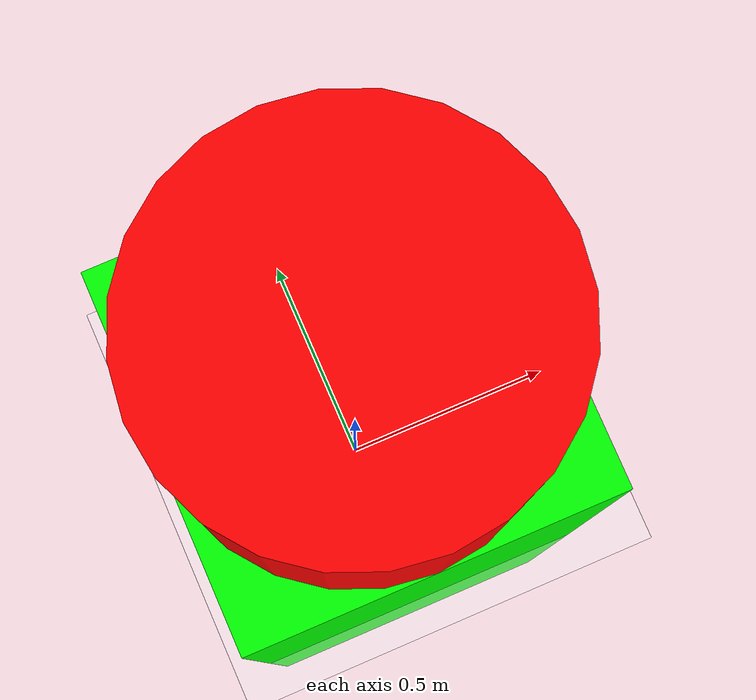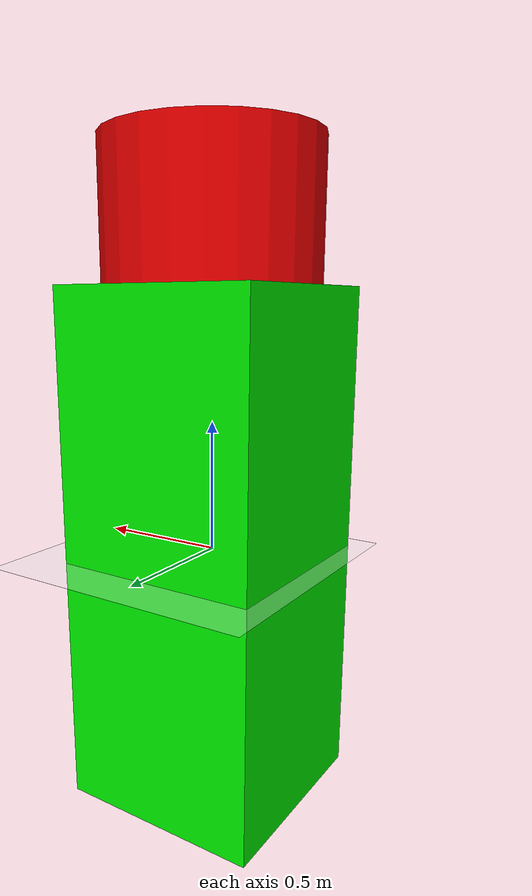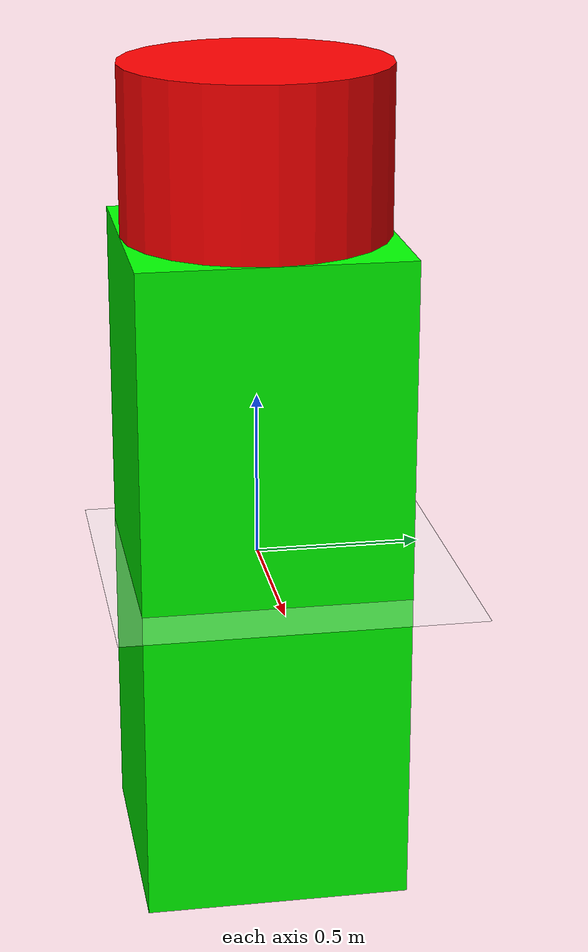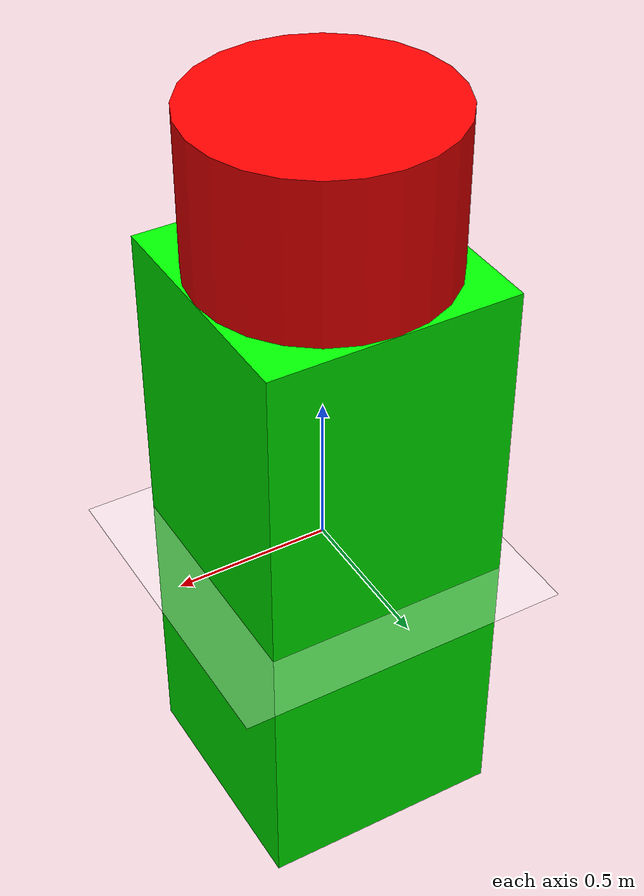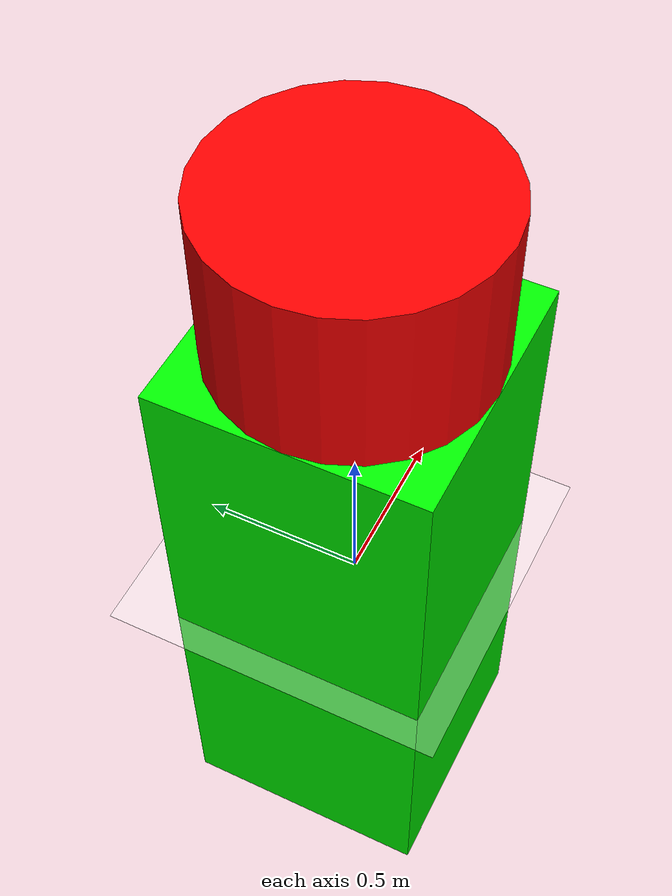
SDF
<sdf version="1.10">
 <world name="mecanum_drive">
  <physics name="1ms" type="ignored">
   <max_step_size>0.001</max_step_size>
   <real_time_factor>1</real_time_factor>
   <real_time_update_rate>1000</real_time_update_rate>
  </physics>
  <plugin name="gz::sim::systems::Physics" filename="gz-sim-physics-system"/>
  <plugin name="gz::sim::systems::UserCommands" filename="gz-sim-user-commands-system"/>
  <plugin name="gz::sim::systems::SceneBroadcaster" filename="gz-sim-scene-broadcaster-system"/>
  <plugin name="gz::sim::systems::Contact" filename="gz-sim-contact-system"/>
  <gravity>0 0 -9.8</gravity>
  <magnetic_field>5.5644999999999998e-06 2.2875799999999999e-05 -4.2388400000000002e-05</magnetic_field>
  <atmosphere type="adiabatic"/>
  <scene>
   <ambient>0.4 0.4 0.4 1</ambient>
   <background>0.7 0.7 0.7 1</background>
   <shadows>true</shadows>
   <grid>false</grid>
  </scene>
  <model name="obstacle_1">
   <pose>0 0 0.5 0 0 0</pose>
   <link name="link">
    <inertial>
     <mass>1.0</mass>
     <inertia><ixx>0.1</ixx><ixy>0</ixy><ixz>0</ixz><iyy>0.1</iyy><iyz>0</iyz><izz>0.1</izz></inertia>
    </inertial>
    <collision name="collision">
     <geometry><cylinder><radius>0.4</radius><length>2.0</length></cylinder></geometry>
    </collision>
    <visual name="visual">
     <geometry><cylinder><radius>0.4</radius><length>2.0</length></cylinder></geometry>
     <material><ambient>1 0 0 1</ambient><diffuse>1 0 0 1</diffuse></material>
    </visual>
   </link>
  </model>
  <model name="obstacle_2">
   <pose>0 0 0.5 0 0 0</pose>
   <link name="link">
    <inertial>
     <mass>1.0</mass>
     <inertia><ixx>0.1</ixx><ixy>0</ixy><ixz>0</ixz><iyy>0.1</iyy><iyz>0</iyz><izz>0.1</izz></inertia>
    </inertial>
    <collision name="collision">
     <geometry><cylinder><radius>0.4</radius><length>2.0</length></cylinder></geometry>
    </collision>
    <visual name="visual">
     <geometry><cylinder><radius>0.4</radius><length>2.0</length></cylinder></geometry>
     <material><ambient>1 0 0 1</ambient><diffuse>1 0 0 1</diffuse></material>
    </visual>
   </link>
  </model>
  <model name="obstacle_3">
   <static>true</static>
   <link name="link">
    <collision name="collision"><geometry><box><size>0.8 0.8 2</size></box></geometry></collision>
    <visual name="visual">
     <geometry><box><size>0.8 0.8 2</size></box></geometry>
     <material><ambient>0 1 0 1</ambient><diffuse>0 1 0 1</diffuse></material>
    </visual>
   </link>
  </model>
  <model name="obstacle_4">
   <static>true</static>
   <link name="link">
    <collision name="collision"><geometry><box><size>0.8 0.8 2</size></box></geometry></collision>
    <visual name="visual">
     <geometry><box><size>0.8 0.8 2</size></box></geometry>
     <material><ambient>0 1 0 1</ambient><diffuse>0 1 0 1</diffuse></material>
    </visual>
   </link>
  </model>
  <model name="ground_plane">
   <static>true</static>
   <link name="link">
    <collision name="collision">
     <geometry><plane><normal>0 0 1</normal><size>100 100</size></plane></geometry>
     <surface><friction><ode><mu>50</mu></ode></friction></surface>
    </collision>
    <visual name="visual">
     <geometry><plane><normal>0 0 1</normal><size>100 100</size></plane></geometry>
     <material>
      <diffuse>1.0 1.0 1.0 1.0</diffuse>
      <specular>0.0 0.0 0.0 1.0</specular>
      <pbr><metal><albedo_map>meshes/field.png</albedo_map></metal></pbr>
     </material>
    </visual>
    <inertial>
     <mass>1</mass>
     <inertia><ixx>1</ixx><ixy>0</ixy><ixz>0</ixz><iyy>1</iyy><iyz>0</iyz><izz>1</izz></inertia>
    </inertial>
   </link>
   <pose>0 0 -0.02 0 0 0</pose>
  </model>
  <light name="sun" type="directional">
   <pose>0 0 10 0 0 0</pose>
   <intensity>1</intensity>
   <direction>-0.5 0.1 -0.9</direction>
   <diffuse>1 1 1 1</diffuse>
   <specular>0.5 0.5 0.5 1</specular>
   <attenuation>
    <range>1000</range>
    <linear>0.01</linear>
    <constant>0.9</constant>
    <quadratic>0.001</quadratic>
   </attenuation>
   <spot><inner_angle>0</inner_angle><outer_angle>0</outer_angle><falloff>0</falloff></spot>
  </light>
 </world>
</sdf>
